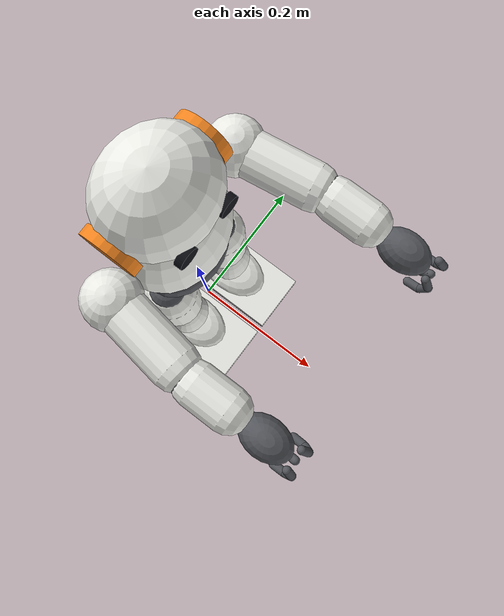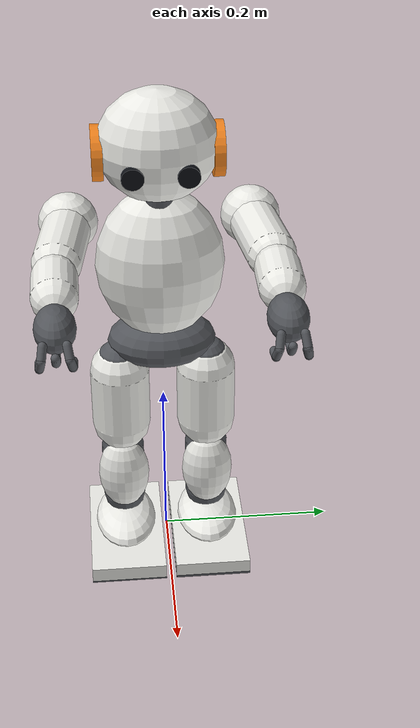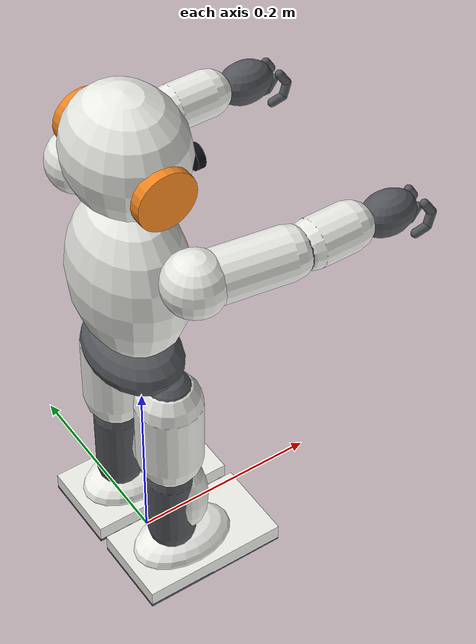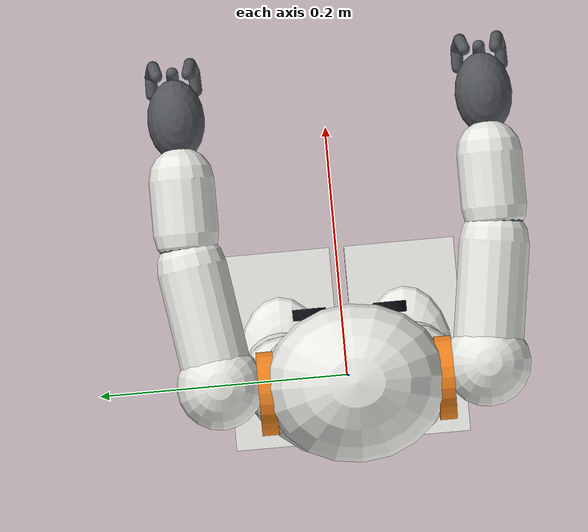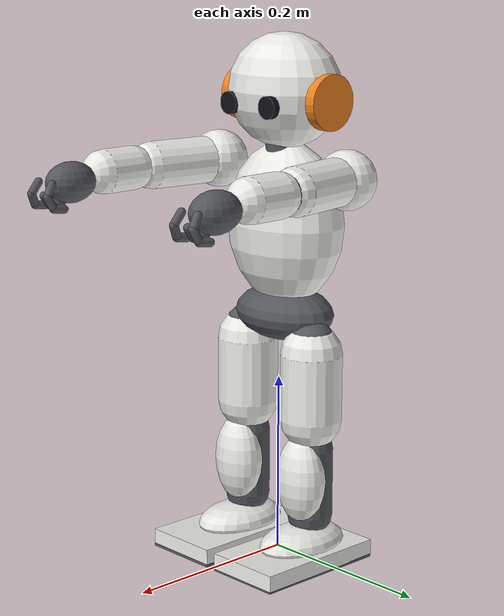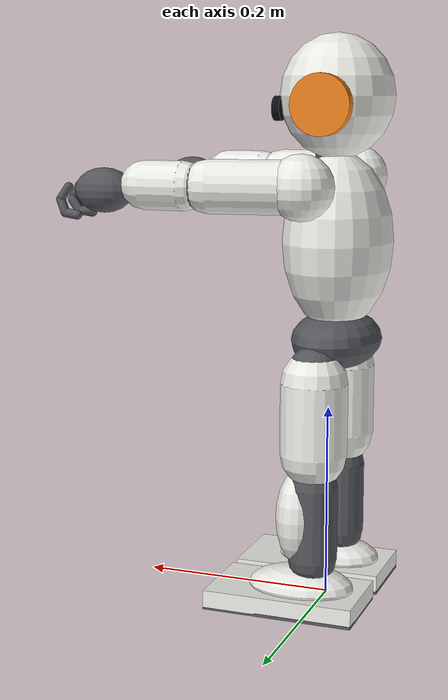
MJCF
<mujoco model="nao">
  <compiler angle="radian" autolimits="true"/>

  <default>
    <default class="nao">
      <default class="nao_joint">
        <!-- Placeholder gains until system identification; unused by the viewer. -->
        <joint damping="0.1" armature="0.005"/>
        <position kp="20" kv="0.5" forcerange="-3 3" inheritrange="1"/>
      </default>
      <default class="nao_finger">
        <joint damping="0.001"/>
      </default>
      <default class="nao_visual">
        <geom contype="0" conaffinity="0" group="1" material="nao_white"/>
      </default>
      <default class="nao_collision">
        <geom group="3" rgba="0.8 0.3 0.3 0.5"/>
      </default>
      <default class="nao_sensor">
        <site group="4" size="0.005"/>
      </default>
      <default class="nao_fsr">
        <site group="4" type="box" size="0.02 0.015 0.004"/>
      </default>
      <default class="nao_effector">
        <site group="4" size="0.008" rgba="0.2 0.8 0.2 1"/>
      </default>
    </default>
  </default>

  <asset>
    <material name="nao_white" rgba="0.93 0.93 0.91 1" specular="0.4" shininess="0.6"/>
    <material name="nao_grey" rgba="0.33 0.34 0.36 1" specular="0.3" shininess="0.4"/>
    <material name="nao_accent" rgba="0.95 0.52 0.12 1" specular="0.4" shininess="0.6"/>
    <material name="nao_eye" rgba="0.05 0.06 0.08 1" specular="0.8" shininess="0.9"/>
  </asset>

  <worldbody>
    <body name="torso" pos="0 0 0.3332" childclass="nao">
      <freejoint name="root"/>
      <inertial pos="-0.00413 0 0.04342" mass="1.04956" fullinertia="0.00308361 0.0028835 0.0015924 1.43116e-05 -3.30211e-05 -2.70793e-05"/>
      <geom class="nao_visual" name="torso_shell" type="ellipsoid" pos="-0.008 0 0.04" size="0.055 0.072 0.09"/>
      <geom class="nao_visual" name="pelvis" type="ellipsoid" pos="-0.008 0 -0.06" size="0.045 0.062 0.03" material="nao_grey"/>
      <geom class="nao_collision" type="box" pos="-0.008 0 0.04" size="0.045 0.065 0.08"/>
      <site name="imu" pos="-0.008 0.00606 0.027" class="nao_sensor"/>
      <body name="Neck" pos="0 0 0.1265">
        <joint name="HeadYaw" class="nao_joint" axis="0 0 1" range="-2.08567 2.08567"/>
        <inertial pos="-1e-05 0 -0.02742" mass="0.07842" fullinertia="1.60324e-05 1.70394e-05 5.53372e-06 1.57e-09 3.16276e-09 -5.295e-08"/>
        <geom class="nao_visual" type="cylinder" fromto="0 0 -0.012 0 0 0.02" size="0.016" material="nao_grey"/>
        <body name="Head" pos="0 0 0">
          <joint name="HeadPitch" class="nao_joint" axis="0 1 0" range="-0.671952 0.514872"/>
          <inertial pos="-0.00112 0 0.05258" mass="0.60533" fullinertia="0.000957766 0.000816836 0.000984976 8.78814e-06 5.33702e-06 -2.99579e-05"/>
          <geom class="nao_visual" name="head_shell" type="ellipsoid" pos="-0.006 0 0.058" size="0.057 0.066 0.062"/>
          <geom class="nao_visual" name="eye_left" type="cylinder" pos="0.046 0.029 0.046" zaxis="1 0 0" size="0.012 0.004" material="nao_eye"/>
          <geom class="nao_visual" name="eye_right" type="cylinder" pos="0.046 -0.029 0.046" zaxis="1 0 0" size="0.012 0.004" material="nao_eye"/>
          <geom class="nao_visual" name="ear_left" type="cylinder" pos="-0.008 0.064 0.05" zaxis="0 1 0" size="0.03 0.006" material="nao_accent"/>
          <geom class="nao_visual" name="ear_right" type="cylinder" pos="-0.008 -0.064 0.05" zaxis="0 1 0" size="0.03 0.006" material="nao_accent"/>
          <geom class="nao_collision" type="capsule" fromto="-0.005 0 0.035 -0.005 0 0.075" size="0.058"/>
          <site name="Head" class="nao_effector"/>
          <camera name="CameraTop" pos="0.05871 0 0.06364" quat="0.505208 0.494737 -0.494737 -0.505208" fovy="47.64"/>
          <camera name="CameraBottom" pos="0.05071 0 0.01774" quat="0.640072 0.300513 -0.300513 -0.640072" fovy="47.64"/>
        </body>
      </body>
      <body name="LShoulder" pos="0 0.098 0.1">
        <joint name="LShoulderPitch" class="nao_joint" axis="0 1 0" range="-2.08567 2.08567"/>
        <inertial pos="-0.00165 -0.02663 0.00014" mass="0.09304" fullinertia="1.83025e-05 1.39005e-05 2.01862e-05 2.06011e-06 1.88776e-09 -3.66592e-07"/>
        <geom class="nao_visual" type="sphere" size="0.032"/>
        <body name="LBicep" pos="0 0 0">
          <joint name="LShoulderRoll" class="nao_joint" axis="0 0 1" range="-0.314159 1.32645"/>
          <inertial pos="0.02455 0.00563 0.0033" mass="0.15777" fullinertia="8.7181e-05 0.000274712 0.000241812 -2.53381e-05 -1.4213e-05 4.71439e-07"/>
          <geom class="nao_visual" type="capsule" fromto="0.015 0.002 0 0.088 0.013 0" size="0.026"/>
          <geom class="nao_collision" type="capsule" fromto="0.01 0 0 0.09 0.013 0" size="0.025"/>
          <body name="LElbow" pos="0.105 0.015 0">
            <joint name="LElbowYaw" class="nao_joint" axis="1 0 0" range="-2.08567 2.08567"/>
            <inertial pos="-0.02744 0 -0.00014" mass="0.06483" fullinertia="5.59588e-06 2.66179e-05 2.76294e-05 4.21e-09 2.92241e-07 -1.84e-09"/>
            <geom class="nao_visual" type="sphere" size="0.021" material="nao_grey"/>
            <body name="LForeArm" pos="0 0 0">
              <joint name="LElbowRoll" class="nao_joint" axis="0 0 1" range="-1.54462 -0.0349066"/>
              <inertial pos="0.02556 0.00281 0.00076" mass="0.07761" fullinertia="2.46746e-05 3.83837e-05 3.59708e-05 3.23152e-06 1.58221e-06 1.39194e-07"/>
              <geom class="nao_visual" type="capsule" fromto="0.008 0 0 0.048 0 0" size="0.024"/>
              <geom class="nao_collision" type="capsule" fromto="0 0 0 0.05 0 0" size="0.023"/>
              <body name="l_wrist" pos="0.05595 0 0">
                <joint name="LWristYaw" class="nao_joint" axis="1 0 0" range="-1.82387 1.82387"/>
                <inertial pos="0.03434 -0.00088 0.00308" mass="0.18533" fullinertia="6.86477e-05 0.000135756 0.000133228 1.15465e-07 -2.87254e-06 2.67539e-06"/>
                <geom class="nao_visual" type="ellipsoid" pos="0.036 0 -0.006" size="0.03 0.021 0.022" material="nao_grey"/>
                <geom class="nao_collision" type="box" pos="0.04 0 -0.005" size="0.035 0.022 0.022"/>
                <site name="LArm" pos="0.05775 0 -0.01231" class="nao_effector"/>
                <body name="l_gripper" pos="0.05775 0 -0.01231">
                  <joint name="LHand" class="nao_joint" axis="1 0 0" range="0 1"/>
                  <inertial pos="0 0 0" mass="2e-06" fullinertia="1.1e-09 1.1e-09 1.1e-09 0 0 0"/>
                </body>
                <body name="LFinger21_link" pos="0.06907 -0.01157 -0.00304" quat="0.672286 0.564114 0.308141 -0.367227">
                  <joint name="LFinger21" class="nao_finger" axis="0 0 1"/>
                  <inertial pos="0 0 0" mass="2e-06" fullinertia="1.1e-09 1.1e-09 1.1e-09 0 0 0"/>
                  <geom class="nao_visual" type="capsule" fromto="0 0 0 0.0134 0 0" size="0.0045" material="nao_grey"/>
                  <body name="LFinger22_link" pos="0.01436 0 0" quat="0.877607 0 0 -0.479381">
                    <joint name="LFinger22" class="nao_finger" axis="0 0 1"/>
                    <inertial pos="0 0 0" mass="2e-06" fullinertia="1.1e-09 1.1e-09 1.1e-09 0 0 0"/>
                    <geom class="nao_visual" type="capsule" fromto="0 0 0 0.0134 0 0" size="0.0045" material="nao_grey"/>
                    <body name="LFinger23_link" pos="0.01436 0 0" quat="0.877607 0 0 -0.479381">
                      <joint name="LFinger23" class="nao_finger" axis="0 0 1"/>
                      <inertial pos="0 0 0" mass="2e-06" fullinertia="1.1e-09 1.1e-09 1.1e-09 0 0 0"/>
                      <geom class="nao_visual" type="capsule" fromto="0 0 0 0.0134 0 0" size="0.0045" material="nao_grey"/>
                    </body>
                  </body>
                </body>
                <body name="LFinger11_link" pos="0.06907 0.01157 -0.00304" quat="0.564115 0.672285 0.367228 -0.30814">
                  <joint name="LFinger11" class="nao_finger" axis="0 0 1"/>
                  <inertial pos="0 0 0" mass="2e-06" fullinertia="1.1e-09 1.1e-09 1.1e-09 0 0 0"/>
                  <geom class="nao_visual" type="capsule" fromto="0 0 0 0.0134 0 0" size="0.0045" material="nao_grey"/>
                  <body name="LFinger12_link" pos="0.01436 0 0" quat="0.877607 0 0 -0.479381">
                    <joint name="LFinger12" class="nao_finger" axis="0 0 1"/>
                    <inertial pos="0 0 0" mass="2e-06" fullinertia="1.1e-09 1.1e-09 1.1e-09 0 0 0"/>
                    <geom class="nao_visual" type="capsule" fromto="0 0 0 0.0134 0 0" size="0.0045" material="nao_grey"/>
                    <body name="LFinger13_link" pos="0.01436 0 0" quat="0.877607 0 0 -0.479381">
                      <joint name="LFinger13" class="nao_finger" axis="0 0 1"/>
                      <inertial pos="0 0 0" mass="2e-06" fullinertia="1.1e-09 1.1e-09 1.1e-09 0 0 0"/>
                      <geom class="nao_visual" type="capsule" fromto="0 0 0 0.0134 0 0" size="0.0045" material="nao_grey"/>
                    </body>
                  </body>
                </body>
                <body name="LThumb1_link" pos="0.04895 0 -0.02638" quat="0.706908 -0.70691 0.0167209 0.016721">
                  <joint name="LThumb1" class="nao_finger" axis="0 0 1"/>
                  <inertial pos="0 0 0" mass="2e-06" fullinertia="1.1e-09 1.1e-09 1.1e-09 0 0 0"/>
                  <geom class="nao_visual" type="capsule" fromto="0 0 0 0.0134 0 0" size="0.0045" material="nao_grey"/>
                  <body name="LThumb2_link" pos="0.01436 0 0" quat="0.877607 0 0 -0.479381">
                    <joint name="LThumb2" class="nao_finger" axis="0 0 1"/>
                    <inertial pos="0 0 0" mass="2e-06" fullinertia="1.1e-09 1.1e-09 1.1e-09 0 0 0"/>
                    <geom class="nao_visual" type="capsule" fromto="0 0 0 0.0134 0 0" size="0.0045" material="nao_grey"/>
                  </body>
                </body>
              </body>
            </body>
          </body>
        </body>
      </body>
      <body name="LPelvis" pos="0 0.05 -0.085">
        <joint name="LHipYawPitch" class="nao_joint" axis="0 0.707106 -0.707106" range="-1.14529 0.740718"/>
        <inertial pos="-0.00781 -0.01114 0.02661" mass="0.06981" fullinertia="2.3407e-05 4.76355e-05 4.97021e-05 1.07922e-06 -1.76003e-06 2.76058e-06"/>
        <body name="LHip" pos="0 0 0">
          <joint name="LHipRoll" class="nao_joint" axis="1 0 0" range="-0.379435 0.79046"/>
          <inertial pos="-0.01549 0.00029 -0.00515" mass="0.14053" fullinertia="2.38445e-05 6.08246e-05 5.43691e-05 -6.53605e-07 7.12893e-06 -2.14072e-07"/>
          <geom class="nao_visual" type="sphere" size="0.026" material="nao_grey"/>
          <body name="LThigh" pos="0 0 0">
            <joint name="LHipPitch" class="nao_joint" axis="0 1 0" range="-1.53589 0.48398"/>
            <inertial pos="0.00138 0.00221 -0.05373" mass="0.38968" fullinertia="0.000509844 0.000465358 0.000301098 2.11296e-06 5.64129e-05 -7.91029e-06"/>
            <geom class="nao_visual" type="capsule" fromto="0 0 -0.012 0 0 -0.085" size="0.034"/>
            <geom class="nao_collision" type="capsule" fromto="0 0 -0.01 0 0 -0.09" size="0.035"/>
            <body name="LTibia" pos="0 0 -0.1">
              <joint name="LKneePitch" class="nao_joint" axis="0 1 0" range="-0.0923279 2.11255"/>
              <inertial pos="0.00453 0.00225 -0.04936" mass="0.30142" fullinertia="0.000446171 0.000388084 0.000185516 3.70584e-06 -3.09008e-05 6.01953e-06"/>
              <geom class="nao_visual" type="sphere" size="0.024" material="nao_grey"/>
              <geom class="nao_visual" type="capsule" fromto="0 0 -0.02 0 0 -0.095" size="0.025" material="nao_grey"/>
              <geom class="nao_visual" type="ellipsoid" pos="0.014 0 -0.052" size="0.024 0.03 0.05"/>
              <geom class="nao_collision" type="capsule" fromto="0 0 -0.01 0 0 -0.09" size="0.03"/>
              <body name="LAnklePitch" pos="0 0 -0.1029">
                <joint name="LAnklePitch" class="nao_joint" axis="0 1 0" range="-1.18944 0.922581"/>
                <inertial pos="0.00045 0.00029 0.00685" mass="0.13416" fullinertia="3.22034e-05 6.7943e-05 5.48269e-05 -8.83212e-09 4.27549e-06 2.84849e-07"/>
                <geom class="nao_visual" type="sphere" size="0.02" material="nao_grey"/>
                <body name="l_ankle" pos="0 0 0">
                  <joint name="LAnkleRoll" class="nao_joint" axis="1 0 0" range="-0.397761 0.768992"/>
                  <inertial pos="0.02542 0.0033 -0.03239" mass="0.17184" fullinertia="8.72911e-05 0.000353024 0.000412846 8.71925e-06 -2.10563e-06 3.73459e-07"/>
                  <geom class="nao_visual" type="ellipsoid" pos="0.012 0 -0.022" size="0.055 0.036 0.02"/>
                  <geom class="nao_visual" type="box" pos="0.025 0 -0.034" size="0.078 0.044 0.009"/>
                  <geom class="nao_visual" type="box" pos="0.025 0 -0.0435" size="0.078 0.044 0.0016" material="nao_grey"/>
                  <geom class="nao_collision" type="box" pos="0.025 0 -0.035" size="0.08 0.045 0.01"/>
                  <site name="LFsrFL" pos="0.07025 0.0299 -0.04511" class="nao_fsr"/>
                  <site name="LFsrFR" pos="0.07025 -0.0231 -0.04511" class="nao_fsr"/>
                  <site name="LFsrRL" pos="-0.03025 0.0299 -0.04511" class="nao_fsr"/>
                  <site name="LFsrRR" pos="-0.02965 -0.0191 -0.04511" class="nao_fsr"/>
                  <site name="LLeg" pos="0 0 -0.04511" class="nao_effector"/>
                </body>
              </body>
            </body>
          </body>
        </body>
      </body>
      <body name="RPelvis" pos="0 -0.05 -0.085">
        <joint name="RHipYawPitch" class="nao_joint" axis="0 0.707106 0.707106" range="-1.14529 0.740718"/>
        <inertial pos="-0.00781 0.01114 0.02661" mass="0.06981" fullinertia="3.18766e-05 5.18361e-05 5.39657e-05 -1.07152e-06 -1.77295e-06 -7.00664e-06"/>
        <body name="RHip" pos="0 0 0">
          <joint name="RHipRoll" class="nao_joint" axis="1 0 0" range="-0.79046 0.379435"/>
          <inertial pos="-0.01549 -0.00029 -0.00515" mass="0.14053" fullinertia="2.38475e-05 6.0824e-05 5.43727e-05 6.12085e-07 7.10235e-06 2.12392e-07"/>
          <geom class="nao_visual" type="sphere" size="0.026" material="nao_grey"/>
          <body name="RThigh" pos="0 0 0">
            <joint name="RHipPitch" class="nao_joint" axis="0 1 0" range="-1.53589 0.48398"/>
            <inertial pos="0.00138 -0.00221 -0.05373" mass="0.38968" fullinertia="0.000510607 0.0004665 0.000301333 -2.02799e-06 5.69893e-05 7.09563e-06"/>
            <geom class="nao_visual" type="capsule" fromto="0 0 -0.012 0 0 -0.085" size="0.034"/>
            <geom class="nao_collision" type="capsule" fromto="0 0 -0.01 0 0 -0.09" size="0.035"/>
            <body name="RTibia" pos="0 0 -0.1">
              <joint name="RKneePitch" class="nao_joint" axis="0 1 0" range="-0.0923279 2.11255"/>
              <inertial pos="0.00453 -0.00225 -0.04936" mass="0.30142" fullinertia="0.000446921 0.000387711 0.000183741 -3.96872e-06 -3.94009e-05 -5.00034e-06"/>
              <geom class="nao_visual" type="sphere" size="0.024" material="nao_grey"/>
              <geom class="nao_visual" type="capsule" fromto="0 0 -0.02 0 0 -0.095" size="0.025" material="nao_grey"/>
              <geom class="nao_visual" type="ellipsoid" pos="0.014 0 -0.052" size="0.024 0.03 0.05"/>
              <geom class="nao_collision" type="capsule" fromto="0 0 -0.01 0 0 -0.09" size="0.03"/>
              <body name="RAnklePitch" pos="0 0 -0.1029">
                <joint name="RAnklePitch" class="nao_joint" axis="0 1 0" range="-1.1863 0.932006"/>
                <inertial pos="0.00045 -0.00029 0.00685" mass="0.13416" fullinertia="3.22017e-05 6.79885e-05 5.48747e-05 4.68321e-08 4.28821e-06 -2.71089e-07"/>
                <geom class="nao_visual" type="sphere" size="0.02" material="nao_grey"/>
                <body name="r_ankle" pos="0 0 0">
                  <joint name="RAnkleRoll" class="nao_joint" axis="1 0 0" range="-0.768992 0.397761"/>
                  <inertial pos="0.02542 -0.0033 -0.03239" mass="0.17184" fullinertia="8.71513e-05 0.000352156 0.000412125 -8.53992e-06 -2.35184e-06 -4.81708e-07"/>
                  <geom class="nao_visual" type="ellipsoid" pos="0.012 0 -0.022" size="0.055 0.036 0.02"/>
                  <geom class="nao_visual" type="box" pos="0.025 0 -0.034" size="0.078 0.044 0.009"/>
                  <geom class="nao_visual" type="box" pos="0.025 0 -0.0435" size="0.078 0.044 0.0016" material="nao_grey"/>
                  <geom class="nao_collision" type="box" pos="0.025 0 -0.035" size="0.08 0.045 0.01"/>
                  <site name="RFsrFL" pos="0.07025 0.0231 -0.04511" class="nao_fsr"/>
                  <site name="RFsrFR" pos="0.07025 -0.0299 -0.04511" class="nao_fsr"/>
                  <site name="RFsrRL" pos="-0.03025 0.0191 -0.04511" class="nao_fsr"/>
                  <site name="RFsrRR" pos="-0.02965 -0.0299 -0.04511" class="nao_fsr"/>
                  <site name="RLeg" pos="0 0 -0.04511" class="nao_effector"/>
                </body>
              </body>
            </body>
          </body>
        </body>
      </body>
      <body name="RShoulder" pos="0 -0.098 0.1">
        <joint name="RShoulderPitch" class="nao_joint" axis="0 1 0" range="-2.08567 2.08567"/>
        <inertial pos="-0.00165 0.02663 0.00014" mass="0.09304" fullinertia="1.83025e-05 1.39005e-05 2.01862e-05 -2.06011e-06 1.88776e-09 3.66592e-07"/>
        <geom class="nao_visual" type="sphere" size="0.032"/>
        <body name="RBicep" pos="0 0 0">
          <joint name="RShoulderRoll" class="nao_joint" axis="0 0 1" range="-1.32645 0.314159"/>
          <inertial pos="0.02455 -0.00563 0.0033" mass="0.15777" fullinertia="0.000103401 0.00027077 0.000254529 5.48849e-05 -1.32643e-05 9.16707e-06"/>
          <geom class="nao_visual" type="capsule" fromto="0.015 -0.002 0 0.088 -0.013 0" size="0.026"/>
          <geom class="nao_collision" type="capsule" fromto="0.01 0 0 0.09 -0.013 0" size="0.025"/>
          <body name="RElbow" pos="0.105 -0.015 0">
            <joint name="RElbowYaw" class="nao_joint" axis="1 0 0" range="-2.08567 2.08567"/>
            <inertial pos="-0.02744 0 -0.00014" mass="0.06483" fullinertia="5.59588e-06 2.66179e-05 2.76294e-05 4.21e-09 2.92241e-07 -1.84e-09"/>
            <geom class="nao_visual" type="sphere" size="0.021" material="nao_grey"/>
            <body name="RForeArm" pos="0 0 0">
              <joint name="RElbowRoll" class="nao_joint" axis="0 0 1" range="0.0349066 1.54462"/>
              <inertial pos="0.02556 -0.00281 0.00076" mass="0.07761" fullinertia="2.47331e-05 3.84719e-05 3.59319e-05 -3.2418e-06 9.06451e-07 -1.38804e-07"/>
              <geom class="nao_visual" type="capsule" fromto="0.008 0 0 0.048 0 0" size="0.024"/>
              <geom class="nao_collision" type="capsule" fromto="0 0 0 0.05 0 0" size="0.023"/>
              <body name="r_wrist" pos="0.05595 0 0">
                <joint name="RWristYaw" class="nao_joint" axis="1 0 0" range="-1.82387 1.82387"/>
                <inertial pos="0.03434 0.00088 0.00308" mass="0.18533" fullinertia="6.86477e-05 0.000135756 0.000133228 1.13165e-05 -2.87254e-06 3.68003e-06"/>
                <geom class="nao_visual" type="ellipsoid" pos="0.036 0 -0.006" size="0.03 0.021 0.022" material="nao_grey"/>
                <geom class="nao_collision" type="box" pos="0.04 0 -0.005" size="0.035 0.022 0.022"/>
                <site name="RArm" pos="0.05775 0 -0.01213" class="nao_effector"/>
                <body name="r_gripper" pos="0.05775 0 -0.01213">
                  <joint name="RHand" class="nao_joint" axis="1 0 0" range="0 1"/>
                  <inertial pos="0 0 0" mass="2e-06" fullinertia="1.1e-09 1.1e-09 1.1e-09 0 0 0"/>
                </body>
                <body name="RFinger21_link" pos="0.06907 -0.01157 -0.00304" quat="0.672286 0.564114 0.308141 -0.367227">
                  <joint name="RFinger21" class="nao_finger" axis="0 0 1"/>
                  <inertial pos="0 0 0" mass="2e-06" fullinertia="1.1e-09 1.1e-09 1.1e-09 0 0 0"/>
                  <geom class="nao_visual" type="capsule" fromto="0 0 0 0.0134 0 0" size="0.0045" material="nao_grey"/>
                  <body name="RFinger22_link" pos="0.01436 0 0" quat="0.877607 0 0 -0.479381">
                    <joint name="RFinger22" class="nao_finger" axis="0 0 1"/>
                    <inertial pos="0 0 0" mass="2e-06" fullinertia="1.1e-09 1.1e-09 1.1e-09 0 0 0"/>
                    <geom class="nao_visual" type="capsule" fromto="0 0 0 0.0134 0 0" size="0.0045" material="nao_grey"/>
                    <body name="RFinger23_link" pos="0.01436 0 0" quat="0.877607 0 0 -0.479381">
                      <joint name="RFinger23" class="nao_finger" axis="0 0 1"/>
                      <inertial pos="0 0 0" mass="2e-06" fullinertia="1.1e-09 1.1e-09 1.1e-09 0 0 0"/>
                      <geom class="nao_visual" type="capsule" fromto="0 0 0 0.0134 0 0" size="0.0045" material="nao_grey"/>
                    </body>
                  </body>
                </body>
                <body name="RFinger11_link" pos="0.06907 0.01157 -0.00304" quat="0.564115 0.672285 0.367228 -0.30814">
                  <joint name="RFinger11" class="nao_finger" axis="0 0 1"/>
                  <inertial pos="0 0 0" mass="2e-06" fullinertia="1.1e-09 1.1e-09 1.1e-09 0 0 0"/>
                  <geom class="nao_visual" type="capsule" fromto="0 0 0 0.0134 0 0" size="0.0045" material="nao_grey"/>
                  <body name="RFinger12_link" pos="0.01436 0 0" quat="0.877607 0 0 -0.479381">
                    <joint name="RFinger12" class="nao_finger" axis="0 0 1"/>
                    <inertial pos="0 0 0" mass="2e-06" fullinertia="1.1e-09 1.1e-09 1.1e-09 0 0 0"/>
                    <geom class="nao_visual" type="capsule" fromto="0 0 0 0.0134 0 0" size="0.0045" material="nao_grey"/>
                    <body name="RFinger13_link" pos="0.01436 0 0" quat="0.877607 0 0 -0.479381">
                      <joint name="RFinger13" class="nao_finger" axis="0 0 1"/>
                      <inertial pos="0 0 0" mass="2e-06" fullinertia="1.1e-09 1.1e-09 1.1e-09 0 0 0"/>
                      <geom class="nao_visual" type="capsule" fromto="0 0 0 0.0134 0 0" size="0.0045" material="nao_grey"/>
                    </body>
                  </body>
                </body>
                <body name="RThumb1_link" pos="0.04895 0 -0.02638" quat="0.706908 -0.70691 0.0167209 0.016721">
                  <joint name="RThumb1" class="nao_finger" axis="0 0 1"/>
                  <inertial pos="0 0 0" mass="2e-06" fullinertia="1.1e-09 1.1e-09 1.1e-09 0 0 0"/>
                  <geom class="nao_visual" type="capsule" fromto="0 0 0 0.0134 0 0" size="0.0045" material="nao_grey"/>
                  <body name="RThumb2_link" pos="0.01436 0 0" quat="0.877607 0 0 -0.479381">
                    <joint name="RThumb2" class="nao_finger" axis="0 0 1"/>
                    <inertial pos="0 0 0" mass="2e-06" fullinertia="1.1e-09 1.1e-09 1.1e-09 0 0 0"/>
                    <geom class="nao_visual" type="capsule" fromto="0 0 0 0.0134 0 0" size="0.0045" material="nao_grey"/>
                  </body>
                </body>
              </body>
            </body>
          </body>
        </body>
      </body>
    </body>
  </worldbody>

  <contact>
    <!-- Adjacent bodies whose joints sit between geom-less bodies, so parent filtering misses them. -->
    <exclude body1="torso" body2="Head"/>
    <exclude body1="torso" body2="LBicep"/>
    <exclude body1="torso" body2="RBicep"/>
    <exclude body1="torso" body2="LThigh"/>
    <exclude body1="torso" body2="RThigh"/>
    <exclude body1="LBicep" body2="LForeArm"/>
    <exclude body1="RBicep" body2="RForeArm"/>
    <exclude body1="LTibia" body2="l_ankle"/>
    <exclude body1="RTibia" body2="r_ankle"/>
    <exclude body1="LThigh" body2="RThigh"/>
  </contact>

  <equality>
    <!-- RHipYawPitch shares LHipYawPitch's motor; the fingers follow their hand (URDF mimic). -->
    <joint joint1="RHipYawPitch" joint2="LHipYawPitch" polycoef="0 1 0 0 0"/>
    <joint joint1="LFinger11" joint2="LHand" polycoef="0 0.999899 0 0 0"/>
    <joint joint1="LFinger12" joint2="LHand" polycoef="0 0.999899 0 0 0"/>
    <joint joint1="LFinger13" joint2="LHand" polycoef="0 0.999899 0 0 0"/>
    <joint joint1="LFinger21" joint2="LHand" polycoef="0 0.999899 0 0 0"/>
    <joint joint1="LFinger22" joint2="LHand" polycoef="0 0.999899 0 0 0"/>
    <joint joint1="LFinger23" joint2="LHand" polycoef="0 0.999899 0 0 0"/>
    <joint joint1="LThumb1" joint2="LHand" polycoef="0 0.999899 0 0 0"/>
    <joint joint1="LThumb2" joint2="LHand" polycoef="0 0.999899 0 0 0"/>
    <joint joint1="RFinger11" joint2="RHand" polycoef="0 0.999899 0 0 0"/>
    <joint joint1="RFinger12" joint2="RHand" polycoef="0 0.999899 0 0 0"/>
    <joint joint1="RFinger13" joint2="RHand" polycoef="0 0.999899 0 0 0"/>
    <joint joint1="RFinger21" joint2="RHand" polycoef="0 0.999899 0 0 0"/>
    <joint joint1="RFinger22" joint2="RHand" polycoef="0 0.999899 0 0 0"/>
    <joint joint1="RFinger23" joint2="RHand" polycoef="0 0.999899 0 0 0"/>
    <joint joint1="RThumb1" joint2="RHand" polycoef="0 0.999899 0 0 0"/>
    <joint joint1="RThumb2" joint2="RHand" polycoef="0 0.999899 0 0 0"/>
  </equality>

  <actuator>
    <position class="nao_joint" name="HeadYaw" joint="HeadYaw"/>
    <position class="nao_joint" name="HeadPitch" joint="HeadPitch"/>
    <position class="nao_joint" name="LShoulderPitch" joint="LShoulderPitch"/>
    <position class="nao_joint" name="LShoulderRoll" joint="LShoulderRoll"/>
    <position class="nao_joint" name="LElbowYaw" joint="LElbowYaw"/>
    <position class="nao_joint" name="LElbowRoll" joint="LElbowRoll"/>
    <position class="nao_joint" name="LWristYaw" joint="LWristYaw"/>
    <position class="nao_joint" name="LHand" joint="LHand"/>
    <position class="nao_joint" name="LHipYawPitch" joint="LHipYawPitch"/>
    <position class="nao_joint" name="LHipRoll" joint="LHipRoll"/>
    <position class="nao_joint" name="LHipPitch" joint="LHipPitch"/>
    <position class="nao_joint" name="LKneePitch" joint="LKneePitch"/>
    <position class="nao_joint" name="LAnklePitch" joint="LAnklePitch"/>
    <position class="nao_joint" name="LAnkleRoll" joint="LAnkleRoll"/>
    <position class="nao_joint" name="RHipYawPitch" joint="RHipYawPitch"/>
    <position class="nao_joint" name="RHipRoll" joint="RHipRoll"/>
    <position class="nao_joint" name="RHipPitch" joint="RHipPitch"/>
    <position class="nao_joint" name="RKneePitch" joint="RKneePitch"/>
    <position class="nao_joint" name="RAnklePitch" joint="RAnklePitch"/>
    <position class="nao_joint" name="RAnkleRoll" joint="RAnkleRoll"/>
    <position class="nao_joint" name="RShoulderPitch" joint="RShoulderPitch"/>
    <position class="nao_joint" name="RShoulderRoll" joint="RShoulderRoll"/>
    <position class="nao_joint" name="RElbowYaw" joint="RElbowYaw"/>
    <position class="nao_joint" name="RElbowRoll" joint="RElbowRoll"/>
    <position class="nao_joint" name="RWristYaw" joint="RWristYaw"/>
    <position class="nao_joint" name="RHand" joint="RHand"/>
  </actuator>

  <sensor>
    <jointpos name="HeadYaw" joint="HeadYaw"/>
    <jointpos name="HeadPitch" joint="HeadPitch"/>
    <jointpos name="LShoulderPitch" joint="LShoulderPitch"/>
    <jointpos name="LShoulderRoll" joint="LShoulderRoll"/>
    <jointpos name="LElbowYaw" joint="LElbowYaw"/>
    <jointpos name="LElbowRoll" joint="LElbowRoll"/>
    <jointpos name="LWristYaw" joint="LWristYaw"/>
    <jointpos name="LHand" joint="LHand"/>
    <jointpos name="LHipYawPitch" joint="LHipYawPitch"/>
    <jointpos name="LHipRoll" joint="LHipRoll"/>
    <jointpos name="LHipPitch" joint="LHipPitch"/>
    <jointpos name="LKneePitch" joint="LKneePitch"/>
    <jointpos name="LAnklePitch" joint="LAnklePitch"/>
    <jointpos name="LAnkleRoll" joint="LAnkleRoll"/>
    <jointpos name="RHipYawPitch" joint="RHipYawPitch"/>
    <jointpos name="RHipRoll" joint="RHipRoll"/>
    <jointpos name="RHipPitch" joint="RHipPitch"/>
    <jointpos name="RKneePitch" joint="RKneePitch"/>
    <jointpos name="RAnklePitch" joint="RAnklePitch"/>
    <jointpos name="RAnkleRoll" joint="RAnkleRoll"/>
    <jointpos name="RShoulderPitch" joint="RShoulderPitch"/>
    <jointpos name="RShoulderRoll" joint="RShoulderRoll"/>
    <jointpos name="RElbowYaw" joint="RElbowYaw"/>
    <jointpos name="RElbowRoll" joint="RElbowRoll"/>
    <jointpos name="RWristYaw" joint="RWristYaw"/>
    <jointpos name="RHand" joint="RHand"/>
    <gyro name="gyro" site="imu"/>
    <accelerometer name="accelerometer" site="imu"/>
    <touch name="LFsrFL" site="LFsrFL"/>
    <touch name="LFsrFR" site="LFsrFR"/>
    <touch name="LFsrRL" site="LFsrRL"/>
    <touch name="LFsrRR" site="LFsrRR"/>
    <touch name="RFsrFL" site="RFsrFL"/>
    <touch name="RFsrFR" site="RFsrFR"/>
    <touch name="RFsrRL" site="RFsrRL"/>
    <touch name="RFsrRR" site="RFsrRR"/>
  </sensor>
</mujoco>
